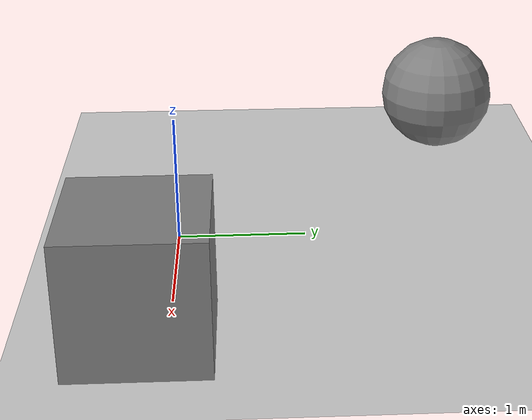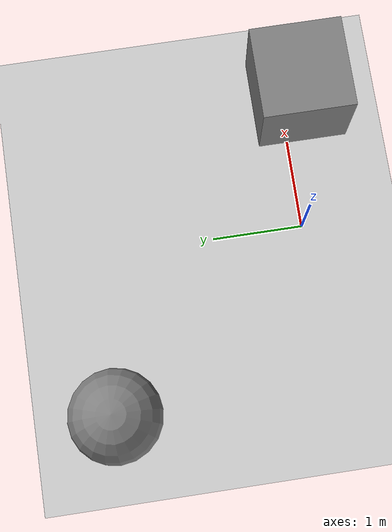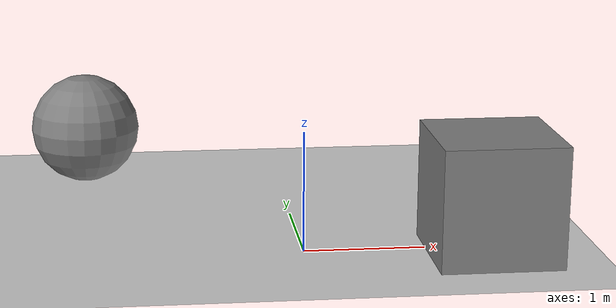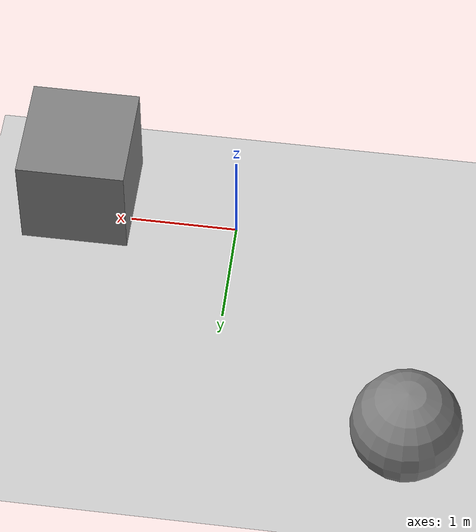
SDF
<?xml version="1.0" ?>
<sdf version="1.7">
  <world name="default">

    <plugin filename="gz-sim-physics-system" name="gz::sim::systems::Physics" />
    <plugin filename="gz-sim-user-commands-system" name="gz::sim::systems::UserCommands" />
    <plugin filename="gz-sim-scene-broadcaster-system" name="gz::sim::systems::SceneBroadcaster" />
    <plugin filename="gz-sim-sensors-system" name="gz::sim::systems::Sensors">
      <render_engine>ogre2</render_engine>
    </plugin>

    <light name="sun" type="directional">
      <cast_shadows>true</cast_shadows>
      <pose>0 0 10 0 0 0</pose>
      <diffuse>0.8 0.8 0.8 1</diffuse>
      <specular>0.2 0.2 0.2 1</specular>
      <direction>-0.5 0.1 -0.9</direction>
    </light>

    <model name="ground_plane">
      <static>true</static>
      <link name="link">
        <collision name="collision">
          <geometry>
            <plane>
              <normal>0 0 1</normal>
              <size>100 100</size>
            </plane>
          </geometry>
        </collision>
        <visual name="visual">
          <geometry>
            <plane>
              <normal>0 0 1</normal>
              <size>100 100</size>
            </plane>
          </geometry>
          <material>
            <ambient>0.8 0.8 0.8 1</ambient>
            <diffuse>0.8 0.8 0.8 1</diffuse>
            <specular>0.8 0.8 0.8 1</specular>
          </material>
        </visual>
      </link>
    </model>

    <model name="unit_box">
      <pose>1.5 -0.18 0.5 0 0 0</pose>
      <link name="link">
        <inertial>
          <mass>1</mass>
          <inertia>
            <ixx>0.166667</ixx>
            <ixy>0</ixy>
            <ixz>0</ixz>
            <iyy>0.166667</iyy>
            <iyz>0</iyz>
            <izz>0.166667</izz>
          </inertia>
        </inertial>
        <collision name="collision">
          <geometry><box><size>1 1 1</size></box></geometry>
        </collision>
        <visual name="visual">
          <geometry><box><size>1 1 1</size></box></geometry>
          <material>
            <ambient>0.5 0.5 0.5 1</ambient>
            <diffuse>0.5 0.5 0.5 1</diffuse>
          </material>
        </visual>
      </link>
    </model>

    <model name="unit_sphere">
      <pose>-1.8 2.3 0.5 0 0 0</pose>
      <link name="link">
        <inertial>
          <mass>1</mass>
          <inertia>
            <ixx>0.1</ixx>
            <ixy>0</ixy>
            <ixz>0</ixz>
            <iyy>0.1</iyy>
            <iyz>0</iyz>
            <izz>0.1</izz>
          </inertia>
        </inertial>
        <collision name="collision">
          <geometry><sphere><radius>0.5</radius></sphere></geometry>
        </collision>
        <visual name="visual">
          <geometry><sphere><radius>0.5</radius></sphere></geometry>
          <material>
            <ambient>0.5 0.5 0.5 1</ambient>
            <diffuse>0.5 0.5 0.5 1</diffuse>
          </material>
        </visual>
      </link>
    </model>

  </world>
</sdf>
